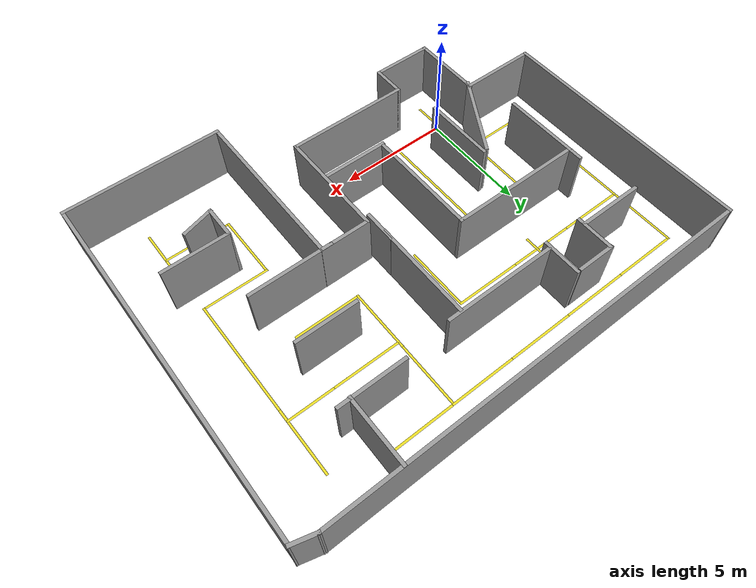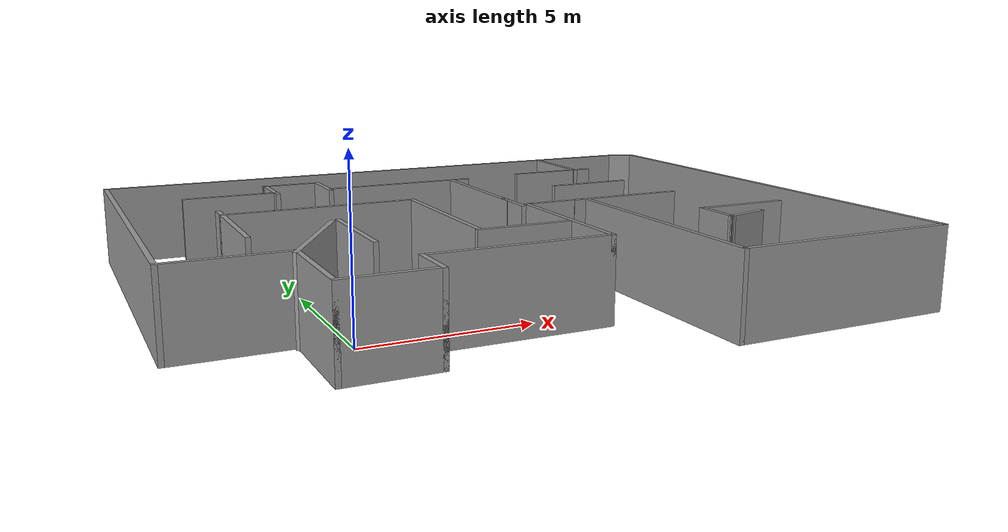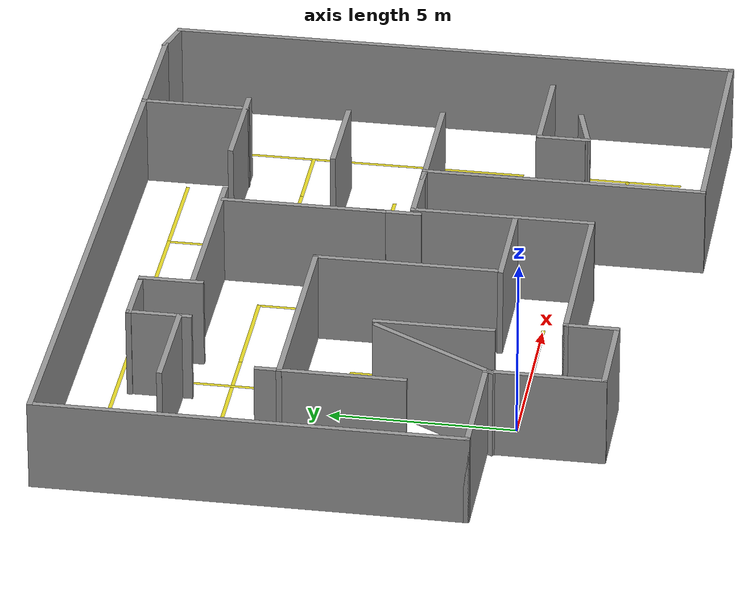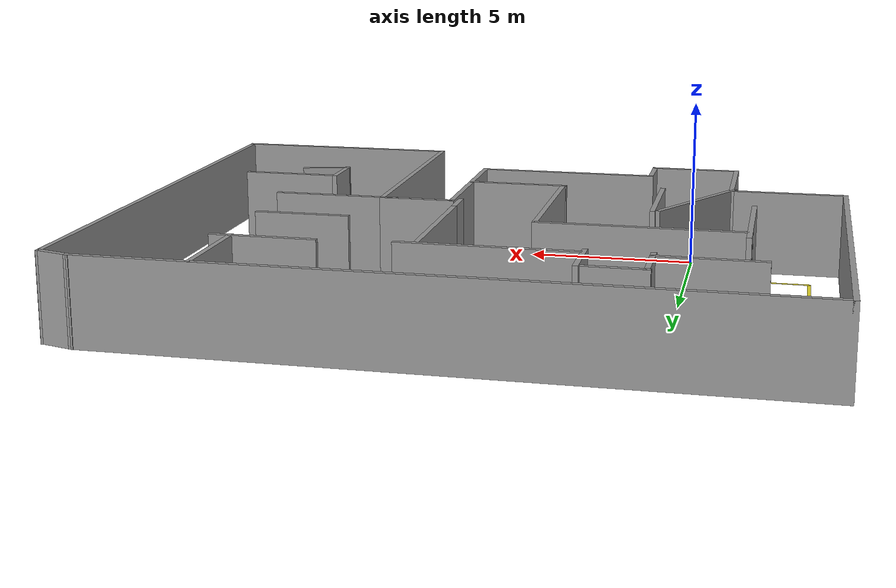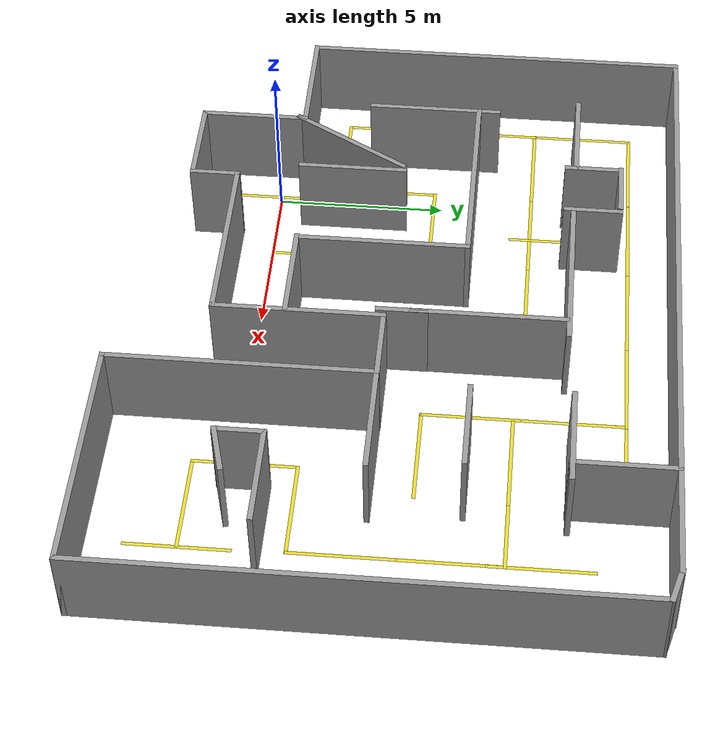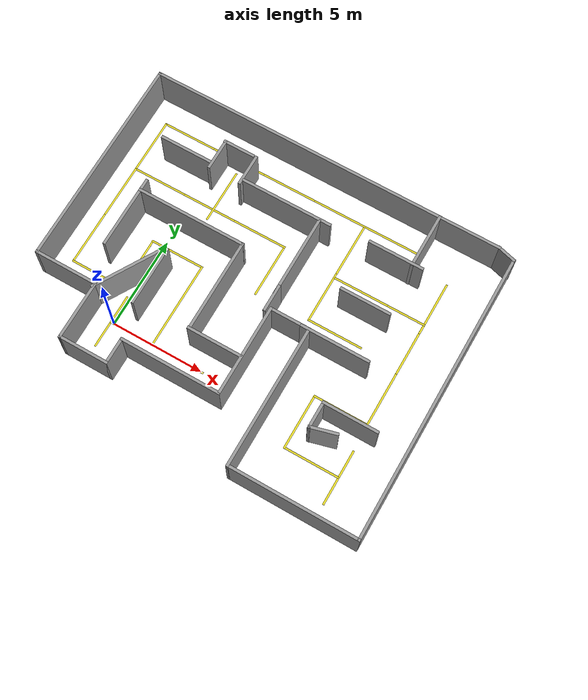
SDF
<sdf version="1.7">
 <world name="default">
  <light name="sun" type="directional">
   <pose>0 0 10 0 -0 0</pose>
   <diffuse>0.8 0.8 0.8 1</diffuse>
   <specular>0.1 0.1 0.1 1</specular>
   <attenuation>
    <range>1000</range>
    <constant>0.9</constant>
    <linear>0.01</linear>
    <quadratic>0.001</quadratic>
   </attenuation>
   <direction>-0.5 0.5 -1</direction>
   <spot><inner_angle>0</inner_angle><outer_angle>0</outer_angle><falloff>0</falloff></spot>
  </light>
  <gravity>0 0 -9.8</gravity>
  <magnetic_field>6e-06 2.3e-05 -4.2e-05</magnetic_field>
  <atmosphere type="adiabatic"/>
  <physics name="default_physics" default="0" type="ode">
   <max_step_size>0.001</max_step_size>
   <real_time_factor>1</real_time_factor>
   <real_time_update_rate>1000</real_time_update_rate>
  </physics>
  <scene><ambient>0.4 0.4 0.4 1</ambient><background>0.7 0.7 0.7 1</background><shadows>1</shadows></scene>
  <spherical_coordinates>
   <surface_model>EARTH_WGS84</surface_model>
   <latitude_deg>0</latitude_deg>
   <longitude_deg>0</longitude_deg>
   <elevation>0</elevation>
   <heading_deg>0</heading_deg>
  </spherical_coordinates>
  <model name="yellow line_5">
   <static>1</static>
   <link name="link_ground">
    <collision name="collision">
     <geometry><plane><normal>0 0 1</normal><size>0.1 4.8</size></plane></geometry>
     <surface><friction><ode><mu>100</mu><mu2>50</mu2></ode></friction></surface>
    </collision>
    <visual name="visual_ground">
     <cast_shadows>0</cast_shadows>
     <geometry><plane><normal>0 0 1</normal><size>0.1 4.8</size></plane></geometry>
     <material>
      <script><uri>file://media/materials/scripts/gazebo.material</uri><name>Gazebo/Yellow</name></script>
     </material>
    </visual>
   </link>
   <pose>2.19978 2.39516 0 0 -0 0</pose>
  </model>
  <model name="yellow line_6">
   <static>1</static>
   <link name="link_ground">
    <collision name="collision">
     <geometry><plane><normal>0 0 1</normal><size>0.1 2.5</size></plane></geometry>
     <surface><friction><ode><mu>100</mu><mu2>50</mu2></ode></friction></surface>
    </collision>
    <visual name="visual_ground">
     <cast_shadows>0</cast_shadows>
     <geometry><plane><normal>0 0 1</normal><size>0.1 2.5</size></plane></geometry>
     <material>
      <script><uri>file://media/materials/scripts/gazebo.material</uri><name>Gazebo/Yellow</name></script>
     </material>
    </visual>
   </link>
   <pose>1 0 0 0 -0 1.57</pose>
  </model>
  <model name="yellow line">
   <pose>3.64084 -0.002208 -2e-06 -4e-06 -0 1.57254</pose>
   <link name="link_ground">
    <collision name="collision">
     <geometry><box><size>0.1 3 1e-05</size></box></geometry>
     <surface><friction><ode><mu>100</mu><mu2>50</mu2></ode></friction></surface>
    </collision>
    <visual name="visual_ground">
     <cast_shadows>0</cast_shadows>
     <geometry><box><size>0.1 3 1e-05</size></box></geometry>
     <material>
      <script><uri>file://media/materials/scripts/gazebo.material</uri><name>Gazebo/Yellow</name></script>
     </material>
    </visual>
    <inertial>
     <inertia><ixx>1</ixx><ixy>0</ixy><ixz>0</ixz><iyy>1</iyy><iyz>0</iyz><izz>1</izz></inertia>
     <mass>1</mass>
    </inertial>
   </link>
  </model>
  <model name="yellow line_clone">
   <pose>0.751702 4.74225 -1e-06 4e-06 -0 1.57253</pose>
   <link name="link_ground">
    <collision name="collision">
     <geometry><box><size>0.1 3 1e-05</size></box></geometry>
     <surface><friction><ode><mu>100</mu><mu2>50</mu2></ode></friction></surface>
    </collision>
    <visual name="visual_ground">
     <cast_shadows>0</cast_shadows>
     <geometry><box><size>0.1 3 1e-05</size></box></geometry>
     <material>
      <script><uri>file://media/materials/scripts/gazebo.material</uri><name>Gazebo/Yellow</name></script>
     </material>
    </visual>
    <inertial>
     <inertia><ixx>1</ixx><ixy>0</ixy><ixz>0</ixz><iyy>1</iyy><iyz>0</iyz><izz>1</izz></inertia>
     <mass>1</mass>
    </inertial>
   </link>
  </model>
  <model name="yellow line_0">
   <pose>-0.684864 3.2835 -1.8e-05 -6e-06 0 0</pose>
   <link name="link_ground">
    <collision name="collision">
     <geometry><box><size>0.1 3 1e-05</size></box></geometry>
     <surface><friction><ode><mu>100</mu><mu2>50</mu2></ode></friction></surface>
    </collision>
    <visual name="visual_ground">
     <cast_shadows>0</cast_shadows>
     <geometry><box><size>0.1 3 1e-05</size></box></geometry>
     <material>
      <script><uri>file://media/materials/scripts/gazebo.material</uri><name>Gazebo/Yellow</name></script>
     </material>
    </visual>
    <inertial>
     <inertia><ixx>1</ixx><ixy>0</ixy><ixz>0</ixz><iyy>1</iyy><iyz>0</iyz><izz>1</izz></inertia>
     <mass>1</mass>
    </inertial>
   </link>
  </model>
  <model name="yellow line_clone_clone">
   <pose>-2.14412 1.82781 -1.1e-05 -4e-06 -5e-06 1.57253</pose>
   <link name="link_ground">
    <collision name="collision">
     <geometry><box><size>0.1 3 1e-05</size></box></geometry>
     <surface><friction><ode><mu>100</mu><mu2>50</mu2></ode></friction></surface>
    </collision>
    <visual name="visual_ground">
     <cast_shadows>0</cast_shadows>
     <geometry><box><size>0.1 3 1e-05</size></box></geometry>
     <material>
      <script><uri>file://media/materials/scripts/gazebo.material</uri><name>Gazebo/Yellow</name></script>
     </material>
    </visual>
    <inertial>
     <inertia><ixx>1</ixx><ixy>0</ixy><ixz>0</ixz><iyy>1</iyy><iyz>0</iyz><izz>1</izz></inertia>
     <mass>1</mass>
    </inertial>
   </link>
  </model>
  <model name="yellow line_1">
   <pose>-3.59658 3.31193 -2.9e-05 4e-06 -0 0</pose>
   <link name="link_ground">
    <collision name="collision">
     <geometry><box><size>0.1 3 1e-05</size></box></geometry>
     <surface><friction><ode><mu>100</mu><mu2>50</mu2></ode></friction></surface>
    </collision>
    <visual name="visual_ground">
     <cast_shadows>0</cast_shadows>
     <geometry><box><size>0.1 3 1e-05</size></box></geometry>
     <material>
      <script><uri>file://media/materials/scripts/gazebo.material</uri><name>Gazebo/Yellow</name></script>
     </material>
    </visual>
    <inertial>
     <inertia><ixx>1</ixx><ixy>0</ixy><ixz>0</ixz><iyy>1</iyy><iyz>0</iyz><izz>1</izz></inertia>
     <mass>1</mass>
    </inertial>
   </link>
  </model>
  <model name="yellow line_2">
   <pose>-3.59619 6.29229 1.6e-05 7e-06 1e-06 0</pose>
   <link name="link_ground">
    <collision name="collision">
     <geometry><box><size>0.1 3 1e-05</size></box></geometry>
     <surface><friction><ode><mu>100</mu><mu2>50</mu2></ode></friction></surface>
    </collision>
    <visual name="visual_ground">
     <cast_shadows>0</cast_shadows>
     <geometry><box><size>0.1 3 1e-05</size></box></geometry>
     <material>
      <script><uri>file://media/materials/scripts/gazebo.material</uri><name>Gazebo/Yellow</name></script>
     </material>
    </visual>
    <inertial>
     <inertia><ixx>1</ixx><ixy>0</ixy><ixz>0</ixz><iyy>1</iyy><iyz>0</iyz><izz>1</izz></inertia>
     <mass>1</mass>
    </inertial>
   </link>
  </model>
  <model name="yellow line_clone_clone_0">
   <pose>-2.14961 7.75344 4e-06 8e-06 -9e-06 1.57253</pose>
   <link name="link_ground">
    <collision name="collision">
     <geometry><box><size>0.1 3 1e-05</size></box></geometry>
     <surface><friction><ode><mu>100</mu><mu2>50</mu2></ode></friction></surface>
    </collision>
    <visual name="visual_ground">
     <cast_shadows>0</cast_shadows>
     <geometry><box><size>0.1 3 1e-05</size></box></geometry>
     <material>
      <script><uri>file://media/materials/scripts/gazebo.material</uri><name>Gazebo/Yellow</name></script>
     </material>
    </visual>
    <inertial>
     <inertia><ixx>1</ixx><ixy>0</ixy><ixz>0</ixz><iyy>1</iyy><iyz>0</iyz><izz>1</izz></inertia>
     <mass>1</mass>
    </inertial>
   </link>
  </model>
  <model name="yellow line_2_clone">
   <pose>-3.59718 9.25688 1e-05 3e-06 -0 0</pose>
   <link name="link_ground">
    <collision name="collision">
     <geometry><box><size>0.1 3 1e-05</size></box></geometry>
     <surface><friction><ode><mu>100</mu><mu2>50</mu2></ode></friction></surface>
    </collision>
    <visual name="visual_ground">
     <cast_shadows>0</cast_shadows>
     <geometry><box><size>0.1 3 1e-05</size></box></geometry>
     <material>
      <script><uri>file://media/materials/scripts/gazebo.material</uri><name>Gazebo/Yellow</name></script>
     </material>
    </visual>
    <inertial>
     <inertia><ixx>1</ixx><ixy>0</ixy><ixz>0</ixz><iyy>1</iyy><iyz>0</iyz><izz>1</izz></inertia>
     <mass>1</mass>
    </inertial>
   </link>
  </model>
  <model name="yellow line_clone_clone_1">
   <pose>0.810121 7.75828 -1.8e-05 -9e-06 -0 1.57253</pose>
   <link name="link_ground">
    <collision name="collision">
     <geometry><box><size>0.1 3 1e-05</size></box></geometry>
     <surface><friction><ode><mu>100</mu><mu2>50</mu2></ode></friction></surface>
    </collision>
    <visual name="visual_ground">
     <cast_shadows>0</cast_shadows>
     <geometry><box><size>0.1 3 1e-05</size></box></geometry>
     <material>
      <script><uri>file://media/materials/scripts/gazebo.material</uri><name>Gazebo/Yellow</name></script>
     </material>
    </visual>
    <inertial>
     <inertia><ixx>1</ixx><ixy>0</ixy><ixz>0</ixz><iyy>1</iyy><iyz>0</iyz><izz>1</izz></inertia>
     <mass>1</mass>
    </inertial>
   </link>
  </model>
  <model name="yellow line_clone_clone_2">
   <pose>3.8 7.76362 -1e-06 -4e-06 1e-06 1.57253</pose>
   <link name="link_ground">
    <collision name="collision">
     <geometry><box><size>0.1 3 1e-05</size></box></geometry>
     <surface><friction><ode><mu>100</mu><mu2>50</mu2></ode></friction></surface>
    </collision>
    <visual name="visual_ground">
     <cast_shadows>0</cast_shadows>
     <geometry><box><size>0.1 3 1e-05</size></box></geometry>
     <material>
      <script><uri>file://media/materials/scripts/gazebo.material</uri><name>Gazebo/Yellow</name></script>
     </material>
    </visual>
    <inertial>
     <inertia><ixx>1</ixx><ixy>0</ixy><ixz>0</ixz><iyy>1</iyy><iyz>0</iyz><izz>1</izz></inertia>
     <mass>1</mass>
    </inertial>
   </link>
  </model>
  <model name="yellow line_3">
   <pose>5.25148 6.31253 -1e-06 -4e-06 -0 2.8e-05</pose>
   <link name="link_ground">
    <collision name="collision">
     <geometry><box><size>0.1 3 1e-05</size></box></geometry>
     <surface><friction><ode><mu>100</mu><mu2>50</mu2></ode></friction></surface>
    </collision>
    <visual name="visual_ground">
     <cast_shadows>0</cast_shadows>
     <geometry><box><size>0.1 3 1e-05</size></box></geometry>
     <material>
      <script><uri>file://media/materials/scripts/gazebo.material</uri><name>Gazebo/Yellow</name></script>
     </material>
    </visual>
    <inertial>
     <inertia><ixx>1</ixx><ixy>0</ixy><ixz>0</ixz><iyy>1</iyy><iyz>0</iyz><izz>1</izz></inertia>
     <mass>1</mass>
    </inertial>
   </link>
  </model>
  <model name="yellow line_4">
   <pose>1.06082 8.6186 0 -3e-06 0 0</pose>
   <link name="link_ground">
    <collision name="collision">
     <geometry><box><size>0.1 2.99999 1e-05</size></box></geometry>
     <surface><friction><ode><mu>100</mu><mu2>50</mu2></ode></friction></surface>
    </collision>
    <visual name="visual_ground">
     <cast_shadows>0</cast_shadows>
     <geometry><box><size>0.1 2.99999 1e-05</size></box></geometry>
     <material>
      <script><uri>file://media/materials/scripts/gazebo.material</uri><name>Gazebo/Yellow</name></script>
     </material>
    </visual>
    <inertial>
     <inertia><ixx>1</ixx><ixy>0</ixy><ixz>0</ixz><iyy>1</iyy><iyz>0</iyz><izz>1</izz></inertia>
     <mass>1</mass>
    </inertial>
   </link>
  </model>
  <model name="yellow line_clone_clone_0_clone">
   <pose>-2.14731 10.7557 -4e-06 6e-06 -1e-06 1.57253</pose>
   <link name="link_ground">
    <collision name="collision">
     <geometry><box><size>0.1 3 1e-05</size></box></geometry>
     <surface><friction><ode><mu>100</mu><mu2>50</mu2></ode></friction></surface>
    </collision>
    <visual name="visual_ground">
     <cast_shadows>0</cast_shadows>
     <geometry><box><size>0.1 3 1e-05</size></box></geometry>
     <material>
      <script><uri>file://media/materials/scripts/gazebo.material</uri><name>Gazebo/Yellow</name></script>
     </material>
    </visual>
    <inertial>
     <inertia><ixx>1</ixx><ixy>0</ixy><ixz>0</ixz><iyy>1</iyy><iyz>0</iyz><izz>1</izz></inertia>
     <mass>1</mass>
    </inertial>
   </link>
  </model>
  <model name="yellow line_clone_clone_0_clone_clone">
   <pose>0.819861 10.7638 -1.5e-05 2e-06 -0 1.57253</pose>
   <link name="link_ground">
    <collision name="collision">
     <geometry><box><size>0.1 3 1e-05</size></box></geometry>
     <surface><friction><ode><mu>100</mu><mu2>50</mu2></ode></friction></surface>
    </collision>
    <visual name="visual_ground">
     <cast_shadows>0</cast_shadows>
     <geometry><box><size>0.1 3 1e-05</size></box></geometry>
     <material>
      <script><uri>file://media/materials/scripts/gazebo.material</uri><name>Gazebo/Yellow</name></script>
     </material>
    </visual>
    <inertial>
     <inertia><ixx>1</ixx><ixy>0</ixy><ixz>0</ixz><iyy>1</iyy><iyz>0</iyz><izz>1</izz></inertia>
     <mass>1</mass>
    </inertial>
   </link>
  </model>
  <model name="yellow line_clone_clone_0_clone_clone_0">
   <pose>3.81147 10.7719 -1.2e-05 -1.8e-05 -0 1.57253</pose>
   <link name="link_ground">
    <collision name="collision">
     <geometry><box><size>0.1 3 1e-05</size></box></geometry>
     <surface><friction><ode><mu>100</mu><mu2>50</mu2></ode></friction></surface>
    </collision>
    <visual name="visual_ground">
     <cast_shadows>0</cast_shadows>
     <geometry><box><size>0.1 3 1e-05</size></box></geometry>
     <material>
      <script><uri>file://media/materials/scripts/gazebo.material</uri><name>Gazebo/Yellow</name></script>
     </material>
    </visual>
    <inertial>
     <inertia><ixx>1</ixx><ixy>0</ixy><ixz>0</ixz><iyy>1</iyy><iyz>0</iyz><izz>1</izz></inertia>
     <mass>1</mass>
    </inertial>
   </link>
  </model>
  <model name="yellow line_clone_clone_0_clone_clone_1">
   <pose>6.7904 10.7785 9e-06 -9e-06 -0 1.57253</pose>
   <link name="link_ground">
    <collision name="collision">
     <geometry><box><size>0.1 3 1e-05</size></box></geometry>
     <surface><friction><ode><mu>100</mu><mu2>50</mu2></ode></friction></surface>
    </collision>
    <visual name="visual_ground">
     <cast_shadows>0</cast_shadows>
     <geometry><box><size>0.1 3 1e-05</size></box></geometry>
     <material>
      <script><uri>file://media/materials/scripts/gazebo.material</uri><name>Gazebo/Yellow</name></script>
     </material>
    </visual>
    <inertial>
     <inertia><ixx>1</ixx><ixy>0</ixy><ixz>0</ixz><iyy>1</iyy><iyz>0</iyz><izz>1</izz></inertia>
     <mass>1</mass>
    </inertial>
   </link>
  </model>
  <model name="yellow line_clone_clone_0_clone_clone_2">
   <pose>9.76563 10.7866 6e-06 -5e-06 0.000158 1.57253</pose>
   <link name="link_ground">
    <collision name="collision">
     <geometry><box><size>0.1 3 1e-05</size></box></geometry>
     <surface><friction><ode><mu>100</mu><mu2>50</mu2></ode></friction></surface>
    </collision>
    <visual name="visual_ground">
     <cast_shadows>0</cast_shadows>
     <geometry><box><size>0.1 3 1e-05</size></box></geometry>
     <material>
      <script><uri>file://media/materials/scripts/gazebo.material</uri><name>Gazebo/Yellow</name></script>
     </material>
    </visual>
    <inertial>
     <inertia><ixx>1</ixx><ixy>0</ixy><ixz>0</ixz><iyy>1</iyy><iyz>0</iyz><izz>1</izz></inertia>
     <mass>1</mass>
    </inertial>
   </link>
  </model>
  <model name="yellow line_7">
   <pose>8.23183 9.31132 -2.3e-05 -1.9e-05 1e-06 0</pose>
   <link name="link_ground">
    <collision name="collision">
     <geometry><box><size>0.1 3 1e-05</size></box></geometry>
     <surface><friction><ode><mu>100</mu><mu2>50</mu2></ode></friction></surface>
    </collision>
    <visual name="visual_ground">
     <cast_shadows>0</cast_shadows>
     <geometry><box><size>0.1 3 1e-05</size></box></geometry>
     <material>
      <script><uri>file://media/materials/scripts/gazebo.material</uri><name>Gazebo/Yellow</name></script>
     </material>
    </visual>
    <inertial>
     <inertia><ixx>1</ixx><ixy>0</ixy><ixz>0</ixz><iyy>1</iyy><iyz>0</iyz><izz>1</izz></inertia>
     <mass>1</mass>
    </inertial>
   </link>
  </model>
  <model name="yellow line_8">
   <pose>8.2307 6.41867 -7e-06 -8e-06 0 0</pose>
   <link name="link_ground">
    <collision name="collision">
     <geometry><box><size>0.1 3 1e-05</size></box></geometry>
     <surface><friction><ode><mu>100</mu><mu2>50</mu2></ode></friction></surface>
    </collision>
    <visual name="visual_ground">
     <cast_shadows>0</cast_shadows>
     <geometry><box><size>0.1 3 1e-05</size></box></geometry>
     <material>
      <script><uri>file://media/materials/scripts/gazebo.material</uri><name>Gazebo/Yellow</name></script>
     </material>
    </visual>
    <inertial>
     <inertia><ixx>1</ixx><ixy>0</ixy><ixz>0</ixz><iyy>1</iyy><iyz>0</iyz><izz>1</izz></inertia>
     <mass>1</mass>
    </inertial>
   </link>
  </model>
  <model name="yellow line_clone_clone_0_clone_clone_2_clone">
   <pose>9.72336 4.97585 0 3e-06 -1e-06 1.57253</pose>
   <link name="link_ground">
    <collision name="collision">
     <geometry><box><size>0.1 3 1e-05</size></box></geometry>
     <surface><friction><ode><mu>100</mu><mu2>50</mu2></ode></friction></surface>
    </collision>
    <visual name="visual_ground">
     <cast_shadows>0</cast_shadows>
     <geometry><box><size>0.1 3 1e-05</size></box></geometry>
     <material>
      <script><uri>file://media/materials/scripts/gazebo.material</uri><name>Gazebo/Yellow</name></script>
     </material>
    </visual>
    <inertial>
     <inertia><ixx>1</ixx><ixy>0</ixy><ixz>0</ixz><iyy>1</iyy><iyz>0</iyz><izz>1</izz></inertia>
     <mass>1</mass>
    </inertial>
   </link>
  </model>
  <model name="yellow line_clone_clone_0_clone_clone_2_clone_0">
   <pose>9.75262 7.5806 -1e-06 -4e-06 -0 1.57253</pose>
   <link name="link_ground">
    <collision name="collision">
     <geometry><box><size>0.1 3 1e-05</size></box></geometry>
     <surface><friction><ode><mu>100</mu><mu2>50</mu2></ode></friction></surface>
    </collision>
    <visual name="visual_ground">
     <cast_shadows>0</cast_shadows>
     <geometry><box><size>0.1 3 1e-05</size></box></geometry>
     <material>
      <script><uri>file://media/materials/scripts/gazebo.material</uri><name>Gazebo/Yellow</name></script>
     </material>
    </visual>
    <inertial>
     <inertia><ixx>1</ixx><ixy>0</ixy><ixz>0</ixz><iyy>1</iyy><iyz>0</iyz><izz>1</izz></inertia>
     <mass>1</mass>
    </inertial>
   </link>
  </model>
  <model name="yellow line_clone_clone_0_clone_clone_2_clone_1">
   <pose>11.8582 7.58394 1e-06 -1e-05 -1e-06 1.57253</pose>
   <link name="link_ground">
    <collision name="collision">
     <geometry><box><size>0.1 3 1e-05</size></box></geometry>
     <surface><friction><ode><mu>100</mu><mu2>50</mu2></ode></friction></surface>
    </collision>
    <visual name="visual_ground">
     <cast_shadows>0</cast_shadows>
     <geometry><box><size>0.1 3 1e-05</size></box></geometry>
     <material>
      <script><uri>file://media/materials/scripts/gazebo.material</uri><name>Gazebo/Yellow</name></script>
     </material>
    </visual>
    <inertial>
     <inertia><ixx>1</ixx><ixy>0</ixy><ixz>0</ixz><iyy>1</iyy><iyz>0</iyz><izz>1</izz></inertia>
     <mass>1</mass>
    </inertial>
   </link>
  </model>
  <model name="yellow line_9">
   <pose>13.3118 6.10237 -1.7e-05 -1.4e-05 0 0</pose>
   <link name="link_ground">
    <collision name="collision">
     <geometry><box><size>0.1 3 1e-05</size></box></geometry>
     <surface><friction><ode><mu>100</mu><mu2>50</mu2></ode></friction></surface>
    </collision>
    <visual name="visual_ground">
     <cast_shadows>0</cast_shadows>
     <geometry><box><size>0.1 3 1e-05</size></box></geometry>
     <material>
      <script><uri>file://media/materials/scripts/gazebo.material</uri><name>Gazebo/Yellow</name></script>
     </material>
    </visual>
    <inertial>
     <inertia><ixx>1</ixx><ixy>0</ixy><ixz>0</ixz><iyy>1</iyy><iyz>0</iyz><izz>1</izz></inertia>
     <mass>1</mass>
    </inertial>
   </link>
  </model>
  <model name="yellow line_10">
   <pose>13.3156 8.55615 -2e-06 4e-06 -0 0</pose>
   <link name="link_ground">
    <collision name="collision">
     <geometry><box><size>0.1 3 1e-05</size></box></geometry>
     <surface><friction><ode><mu>100</mu><mu2>50</mu2></ode></friction></surface>
    </collision>
    <visual name="visual_ground">
     <cast_shadows>0</cast_shadows>
     <geometry><box><size>0.1 3 1e-05</size></box></geometry>
     <material>
      <script><uri>file://media/materials/scripts/gazebo.material</uri><name>Gazebo/Yellow</name></script>
     </material>
    </visual>
    <inertial>
     <inertia><ixx>1</ixx><ixy>0</ixy><ixz>0</ixz><iyy>1</iyy><iyz>0</iyz><izz>1</izz></inertia>
     <mass>1</mass>
    </inertial>
   </link>
  </model>
  <model name="yellow line_11">
   <pose>13.3117 3.16747 -7e-06 1.6e-05 1e-06 0</pose>
   <link name="link_ground">
    <collision name="collision">
     <geometry><box><size>0.1 3 1e-05</size></box></geometry>
     <surface><friction><ode><mu>100</mu><mu2>50</mu2></ode></friction></surface>
    </collision>
    <visual name="visual_ground">
     <cast_shadows>0</cast_shadows>
     <geometry><box><size>0.1 3 1e-05</size></box></geometry>
     <material>
      <script><uri>file://media/materials/scripts/gazebo.material</uri><name>Gazebo/Yellow</name></script>
     </material>
    </visual>
    <inertial>
     <inertia><ixx>1</ixx><ixy>0</ixy><ixz>0</ixz><iyy>1</iyy><iyz>0</iyz><izz>1</izz></inertia>
     <mass>1</mass>
    </inertial>
   </link>
  </model>
  <model name="yellow line_clone_clone_0_clone_clone_2_clone_clone">
   <pose>11.8558 1.70407 -2.6e-05 8e-06 -1e-06 1.57253</pose>
   <link name="link_ground">
    <collision name="collision">
     <geometry><box><size>0.1 3 1e-05</size></box></geometry>
     <surface><friction><ode><mu>100</mu><mu2>50</mu2></ode></friction></surface>
    </collision>
    <visual name="visual_ground">
     <cast_shadows>0</cast_shadows>
     <geometry><box><size>0.1 3 1e-05</size></box></geometry>
     <material>
      <script><uri>file://media/materials/scripts/gazebo.material</uri><name>Gazebo/Yellow</name></script>
     </material>
    </visual>
    <inertial>
     <inertia><ixx>1</ixx><ixy>0</ixy><ixz>0</ixz><iyy>1</iyy><iyz>0</iyz><izz>1</izz></inertia>
     <mass>1</mass>
    </inertial>
   </link>
  </model>
  <model name="yellow line_12">
   <pose>10.4111 0.197266 -7e-06 -1.6e-05 2e-06 0</pose>
   <link name="link_ground">
    <collision name="collision">
     <geometry><box><size>0.1 3 1e-05</size></box></geometry>
     <surface><friction><ode><mu>100</mu><mu2>50</mu2></ode></friction></surface>
    </collision>
    <visual name="visual_ground">
     <cast_shadows>0</cast_shadows>
     <geometry><box><size>0.1 3 1e-05</size></box></geometry>
     <material>
      <script><uri>file://media/materials/scripts/gazebo.material</uri><name>Gazebo/Yellow</name></script>
     </material>
    </visual>
    <inertial>
     <inertia><ixx>1</ixx><ixy>0</ixy><ixz>0</ixz><iyy>1</iyy><iyz>0</iyz><izz>1</izz></inertia>
     <mass>1</mass>
    </inertial>
   </link>
  </model>
  <model name="yellow line_clone_clone_0_clone_clone_2_clone_clone_clone">
   <pose>11.8744 -1.24777 3e-06 1e-06 -0 1.57253</pose>
   <link name="link_ground">
    <collision name="collision">
     <geometry><box><size>0.1 3 1e-05</size></box></geometry>
     <surface><friction><ode><mu>100</mu><mu2>50</mu2></ode></friction></surface>
    </collision>
    <visual name="visual_ground">
     <cast_shadows>0</cast_shadows>
     <geometry><box><size>0.1 3 1e-05</size></box></geometry>
     <material>
      <script><uri>file://media/materials/scripts/gazebo.material</uri><name>Gazebo/Yellow</name></script>
     </material>
    </visual>
    <inertial>
     <inertia><ixx>1</ixx><ixy>0</ixy><ixz>0</ixz><iyy>1</iyy><iyz>0</iyz><izz>1</izz></inertia>
     <mass>1</mass>
    </inertial>
   </link>
  </model>
  <model name="yellow line_13">
   <pose>13.3674 -1.23961 -9e-06 9e-06 -0 0</pose>
   <link name="link_ground">
    <collision name="collision">
     <geometry><box><size>0.1 3 1e-05</size></box></geometry>
     <surface><friction><ode><mu>100</mu><mu2>50</mu2></ode></friction></surface>
    </collision>
    <visual name="visual_ground">
     <cast_shadows>0</cast_shadows>
     <geometry><box><size>0.1 3 1e-05</size></box></geometry>
     <material>
      <script><uri>file://media/materials/scripts/gazebo.material</uri><name>Gazebo/Yellow</name></script>
     </material>
    </visual>
    <inertial>
     <inertia><ixx>1</ixx><ixy>0</ixy><ixz>0</ixz><iyy>1</iyy><iyz>0</iyz><izz>1</izz></inertia>
     <mass>1</mass>
    </inertial>
   </link>
  </model>
  <model name="yellow line_14">
   <pose>-0.200066 0.042625 -2e-06 4e-06 -0 0</pose>
   <link name="link_ground">
    <collision name="collision">
     <geometry><box><size>0.1 3 1e-05</size></box></geometry>
     <surface><friction><ode><mu>100</mu><mu2>50</mu2></ode></friction></surface>
    </collision>
    <visual name="visual_ground">
     <cast_shadows>0</cast_shadows>
     <geometry><box><size>0.1 3 1e-05</size></box></geometry>
     <material>
      <script><uri>file://media/materials/scripts/gazebo.material</uri><name>Gazebo/Yellow</name></script>
     </material>
    </visual>
    <inertial>
     <inertia><ixx>1</ixx><ixy>0</ixy><ixz>0</ixz><iyy>1</iyy><iyz>0</iyz><izz>1</izz></inertia>
     <mass>1</mass>
    </inertial>
   </link>
  </model>
  <model name="room">
   <pose>5.60096 4.11911 0 0 -0 0</pose>
   <link name="Wall_19">
    <collision name="Wall_19_Collision">
     <geometry><box><size>3.25 0.15 2.5</size></box></geometry>
     <pose>0 0 1.25 0 -0 0</pose>
    </collision>
    <visual name="Wall_19_Visual">
     <pose>0 0 1.25 0 -0 0</pose>
     <geometry><box><size>3.25 0.15 2.5</size></box></geometry>
     <material>
      <script><uri>file://media/materials/scripts/gazebo.material</uri><name>Gazebo/Grey</name></script>
      <ambient>1 1 1 1</ambient>
     </material>
     <meta><layer>0</layer></meta>
    </visual>
    <pose>-6.78367 -4.98367 0 0 0 -1.5708</pose>
   </link>
   <link name="Wall_20">
    <collision name="Wall_20_Collision">
     <geometry><box><size>2.75 0.15 2.5</size></box></geometry>
     <pose>0 0 1.25 0 -0 0</pose>
    </collision>
    <visual name="Wall_20_Visual">
     <pose>0 0 1.25 0 -0 0</pose>
     <geometry><box><size>2.75 0.15 2.5</size></box></geometry>
     <material>
      <script><uri>file://media/materials/scripts/gazebo.material</uri><name>Gazebo/Grey</name></script>
      <ambient>1 1 1 1</ambient>
     </material>
     <meta><layer>0</layer></meta>
    </visual>
    <pose>-5.48367 -6.53367 0 0 -0 0</pose>
   </link>
   <link name="Wall_21">
    <collision name="Wall_21_Collision">
     <geometry><box><size>1.5 0.15 2.5</size></box></geometry>
     <pose>0 0 1.25 0 -0 0</pose>
    </collision>
    <visual name="Wall_21_Visual">
     <pose>0 0 1.25 0 -0 0</pose>
     <geometry><box><size>1.5 0.15 2.5</size></box></geometry>
     <material>
      <script><uri>file://media/materials/scripts/gazebo.material</uri><name>Gazebo/Grey</name></script>
      <ambient>1 1 1 1</ambient>
     </material>
     <meta><layer>0</layer></meta>
    </visual>
    <pose>-4.18367 -5.85867 0 0 -0 1.5708</pose>
   </link>
   <link name="Wall_22">
    <collision name="Wall_22_Collision">
     <geometry><box><size>5.5 0.15 2.5</size></box></geometry>
     <pose>0 0 1.25 0 -0 0</pose>
    </collision>
    <visual name="Wall_22_Visual">
     <pose>0 0 1.25 0 -0 0</pose>
     <geometry><box><size>5.5 0.15 2.5</size></box></geometry>
     <material>
      <script><uri>file://media/materials/scripts/gazebo.material</uri><name>Gazebo/Grey</name></script>
      <ambient>1 1 1 1</ambient>
     </material>
     <meta><layer>0</layer></meta>
    </visual>
    <pose>-1.50867 -5.18367 0 0 -0 0</pose>
   </link>
   <link name="Wall_23">
    <collision name="Wall_23_Collision">
     <geometry><box><size>5 0.15 2.5</size></box></geometry>
     <pose>0 0 1.25 0 -0 0</pose>
    </collision>
    <visual name="Wall_23_Visual">
     <pose>0 0 1.25 0 -0 0</pose>
     <geometry><box><size>5 0.15 2.5</size></box></geometry>
     <material>
      <script><uri>file://media/materials/scripts/gazebo.material</uri><name>Gazebo/Grey</name></script>
      <ambient>1 1 1 1</ambient>
     </material>
     <meta><layer>0</layer></meta>
    </visual>
    <pose>1.16633 -2.75867 0 0 -0 1.5708</pose>
   </link>
   <link name="Wall_24">
    <collision name="Wall_24_Collision">
     <geometry><box><size>2.25 0.15 2.5</size></box></geometry>
     <pose>0 0 1.25 0 -0 0</pose>
    </collision>
    <visual name="Wall_24_Visual">
     <pose>0 0 1.25 0 -0 0</pose>
     <geometry><box><size>2.25 0.15 2.5</size></box></geometry>
     <material>
      <script><uri>file://media/materials/scripts/gazebo.material</uri><name>Gazebo/Grey</name></script>
      <ambient>1 1 1 1</ambient>
     </material>
     <meta><layer>0</layer></meta>
    </visual>
    <pose>2.21633 -0.333668 0 0 -0 0</pose>
   </link>
   <link name="Wall_25">
    <collision name="Wall_25_Collision">
     <geometry><box><size>7.75 0.15 2.5</size></box></geometry>
     <pose>0 0 1.25 0 -0 0</pose>
    </collision>
    <visual name="Wall_25_Visual">
     <pose>0 0 1.25 0 -0 0</pose>
     <geometry><box><size>7.75 0.15 2.5</size></box></geometry>
     <material>
      <script><uri>file://media/materials/scripts/gazebo.material</uri><name>Gazebo/Grey</name></script>
      <ambient>1 1 1 1</ambient>
     </material>
     <meta><layer>0</layer></meta>
    </visual>
    <pose>3.26633 -4.13367 0 0 0 -1.5708</pose>
   </link>
   <link name="Wall_26">
    <collision name="Wall_26_Collision">
     <geometry><box><size>7 0.15 2.5</size></box></geometry>
     <pose>0 0 1.25 0 -0 0</pose>
    </collision>
    <visual name="Wall_26_Visual">
     <pose>0 0 1.25 0 -0 0</pose>
     <geometry><box><size>7 0.15 2.5</size></box></geometry>
     <material>
      <script><uri>file://media/materials/scripts/gazebo.material</uri><name>Gazebo/Grey</name></script>
      <ambient>1 1 1 1</ambient>
     </material>
     <meta><layer>0</layer></meta>
    </visual>
    <pose>6.69133 -7.93367 0 0 -0 0</pose>
   </link>
   <link name="Wall_27">
    <collision name="Wall_27_Collision">
     <geometry><box><size>15.75 0.15 2.5</size></box></geometry>
     <pose>0 0 1.25 0 -0 0</pose>
    </collision>
    <visual name="Wall_27_Visual">
     <pose>0 0 1.25 0 -0 0</pose>
     <geometry><box><size>15.75 0.15 2.5</size></box></geometry>
     <material>
      <script><uri>file://media/materials/scripts/gazebo.material</uri><name>Gazebo/Grey</name></script>
      <ambient>1 1 1 1</ambient>
     </material>
     <meta><layer>0</layer></meta>
    </visual>
    <pose>10.1163 -0.133668 0 0 -0 1.5708</pose>
   </link>
   <link name="Wall_28">
    <collision name="Wall_28_Collision">
     <geometry><box><size>1.08408 0.15 2.5</size></box></geometry>
     <pose>0 0 1.25 0 -0 0</pose>
    </collision>
    <visual name="Wall_28_Visual">
     <pose>0 0 1.25 0 -0 0</pose>
     <geometry><box><size>1.08408 0.15 2.5</size></box></geometry>
     <material>
      <script><uri>file://media/materials/scripts/gazebo.material</uri><name>Gazebo/Grey</name></script>
      <ambient>1 1 1 1</ambient>
     </material>
     <meta><layer>0</layer></meta>
    </visual>
    <pose>9.66633 7.79133 0 0 -0 2.87065</pose>
   </link>
   <link name="Wall_3">
    <collision name="Wall_3_Collision">
     <geometry><box><size>3.5 0.15 2.5</size></box></geometry>
     <pose>0 0 1.25 0 -0 0</pose>
    </collision>
    <visual name="Wall_3_Visual">
     <pose>0 0 1.25 0 -0 0</pose>
     <geometry><box><size>3.5 0.15 2.5</size></box></geometry>
     <material>
      <script><uri>file://media/materials/scripts/gazebo.material</uri><name>Gazebo/Grey</name></script>
      <ambient>1 1 1 1</ambient>
     </material>
     <meta><layer>0</layer></meta>
    </visual>
    <pose>-8.45867 -3.43367 0 0 -0 3.14159</pose>
   </link>
   <link name="Wall_4">
    <collision name="Wall_4_Collision">
     <geometry><box><size>11.5 0.15 2.5</size></box></geometry>
     <pose>0 0 1.25 0 -0 0</pose>
    </collision>
    <visual name="Wall_4_Visual">
     <pose>0 0 1.25 0 -0 0</pose>
     <geometry><box><size>11.5 0.15 2.5</size></box></geometry>
     <material>
      <script><uri>file://media/materials/scripts/gazebo.material</uri><name>Gazebo/Grey</name></script>
      <ambient>1 1 1 1</ambient>
     </material>
     <meta><layer>0</layer></meta>
    </visual>
    <pose>-10.1337 2.24133 0 0 -0 1.5708</pose>
   </link>
   <link name="Wall_5">
    <collision name="Wall_5_Collision">
     <geometry><box><size>19.5 0.15 2.5</size></box></geometry>
     <pose>0 0 1.25 0 -0 0</pose>
    </collision>
    <visual name="Wall_5_Visual">
     <pose>0 0 1.25 0 -0 0</pose>
     <geometry><box><size>19.5 0.15 2.5</size></box></geometry>
     <material>
      <script><uri>file://media/materials/scripts/gazebo.material</uri><name>Gazebo/Grey</name></script>
      <ambient>1 1 1 1</ambient>
     </material>
     <meta><layer>0</layer></meta>
    </visual>
    <pose>-0.458668 7.91633 0 0 -0 0</pose>
   </link>
   <static>1</static>
  </model>
  <model name="maze_new">
   <pose>5.78301 4.98986 0 0 -0 0</pose>
   <link name="Wall_12">
    <collision name="Wall_12_Collision">
     <geometry><box><size>5 0.15 2.5</size></box></geometry>
     <pose>0 0 1.25 0 -0 0</pose>
    </collision>
    <visual name="Wall_12_Visual">
     <pose>0 0 1.25 0 -0 0</pose>
     <geometry><box><size>5 0.15 2.5</size></box></geometry>
     <material>
      <script><uri>file://media/materials/scripts/gazebo.material</uri><name>Gazebo/Grey</name></script>
      <ambient>1 1 1 1</ambient>
     </material>
     <meta><layer>0</layer></meta>
    </visual>
    <pose>-1.87974 -1.44458 0 0 -0 1.5708</pose>
   </link>
   <link name="Wall_14">
    <collision name="Wall_14_Collision">
     <geometry><box><size>3 0.15 2.5</size></box></geometry>
     <pose>0 0 1.25 0 -0 0</pose>
    </collision>
    <visual name="Wall_14_Visual">
     <pose>0 0 1.25 0 -0 0</pose>
     <geometry><box><size>3 0.15 2.5</size></box></geometry>
     <material>
      <script><uri>file://media/materials/scripts/gazebo.material</uri><name>Gazebo/Grey</name></script>
      <ambient>1 1 1 1</ambient>
     </material>
     <meta><layer>0</layer></meta>
    </visual>
    <pose>-6.85611 4.03277 0 0 -0 0</pose>
   </link>
   <link name="Wall_16">
    <collision name="Wall_16_Collision">
     <geometry><box><size>1.75 0.15 2.5</size></box></geometry>
     <pose>0 0 1.25 0 -0 0</pose>
    </collision>
    <visual name="Wall_16_Visual">
     <pose>0 0 1.25 0 -0 0</pose>
     <geometry><box><size>1.75 0.15 2.5</size></box></geometry>
     <material>
      <script><uri>file://media/materials/scripts/gazebo.material</uri><name>Gazebo/Grey</name></script>
      <ambient>1 1 1 1</ambient>
     </material>
     <meta><layer>0</layer></meta>
    </visual>
    <pose>-4.64771 5.37951 0 0 -0 0</pose>
   </link>
   <link name="Wall_2">
    <collision name="Wall_2_Collision">
     <geometry><box><size>3.25 0.15 2.5</size></box></geometry>
     <pose>0 0 1.25 0 -0 0</pose>
    </collision>
    <visual name="Wall_2_Visual">
     <pose>0 0 1.25 0 -0 0</pose>
     <geometry><box><size>3.25 0.15 2.5</size></box></geometry>
     <material>
      <script><uri>file://media/materials/scripts/gazebo.material</uri><name>Gazebo/Grey</name></script>
      <ambient>1 1 1 1</ambient>
     </material>
     <meta><layer>0</layer></meta>
    </visual>
    <pose>-4.90796 -2.64391 0 0 -0 1.5708</pose>
   </link>
   <link name="Wall_20">
    <collision name="Wall_20_Collision">
     <geometry><box><size>5 0.15 2.5</size></box></geometry>
     <pose>0 0 1.25 0 -0 0</pose>
    </collision>
    <visual name="Wall_20_Visual">
     <pose>0 0 1.25 0 -0 0</pose>
     <geometry><box><size>5 0.15 2.5</size></box></geometry>
     <material>
      <script><uri>file://media/materials/scripts/gazebo.material</uri><name>Gazebo/Grey</name></script>
      <ambient>1 1 1 1</ambient>
     </material>
     <meta><layer>0</layer></meta>
    </visual>
    <pose>-1.13084 3.99779 0 0 -0 3.14159</pose>
   </link>
   <link name="Wall_22">
    <collision name="Wall_22_Collision">
     <geometry><box><size>4.5 0.15 2.5</size></box></geometry>
     <pose>0 0 1.25 0 -0 0</pose>
    </collision>
    <visual name="Wall_22_Visual">
     <pose>0 0 1.25 0 -0 0</pose>
     <geometry><box><size>4.5 0.15 2.5</size></box></geometry>
     <material>
      <script><uri>file://media/materials/scripts/gazebo.material</uri><name>Gazebo/Grey</name></script>
      <ambient>1 1 1 1</ambient>
     </material>
     <meta><layer>0</layer></meta>
    </visual>
    <pose>0.743767 1.75283 0 0 -0 -1.5708</pose>
   </link>
   <link name="Wall_24">
    <collision name="Wall_24_Collision">
     <geometry><box><size>3 0.15 2.5</size></box></geometry>
     <pose>0 0 1.25 0 -0 0</pose>
    </collision>
    <visual name="Wall_24_Visual">
     <pose>0 0 1.25 0 -0 0</pose>
     <geometry><box><size>3 0.15 2.5</size></box></geometry>
     <material>
      <script><uri>file://media/materials/scripts/gazebo.material</uri><name>Gazebo/Grey</name></script>
      <ambient>1 1 1 1</ambient>
     </material>
     <meta><layer>0</layer></meta>
    </visual>
    <pose>4.86312 4.20768 0 0 -0 3.14159</pose>
   </link>
   <link name="Wall_26">
    <collision name="Wall_26_Collision">
     <geometry><box><size>2.75 0.15 2.5</size></box></geometry>
     <pose>0 0 1.25 0 -0 0</pose>
    </collision>
    <visual name="Wall_26_Visual">
     <pose>0 0 1.25 0 -0 0</pose>
     <geometry><box><size>2.75 0.15 2.5</size></box></geometry>
     <material>
      <script><uri>file://media/materials/scripts/gazebo.material</uri><name>Gazebo/Grey</name></script>
      <ambient>1 1 1 1</ambient>
     </material>
     <meta><layer>0</layer></meta>
    </visual>
    <pose>4.71461 1.37429 0 0 -0 0</pose>
   </link>
   <link name="Wall_28">
    <collision name="Wall_28_Collision">
     <geometry><box><size>3.75 0.15 2.5</size></box></geometry>
     <pose>0 0 1.25 0 -0 0</pose>
    </collision>
    <visual name="Wall_28_Visual">
     <pose>0 0 1.25 0 -0 0</pose>
     <geometry><box><size>3.75 0.15 2.5</size></box></geometry>
     <material>
      <script><uri>file://media/materials/scripts/gazebo.material</uri><name>Gazebo/Grey</name></script>
      <ambient>1 1 1 1</ambient>
     </material>
     <meta><layer>0</layer></meta>
    </visual>
    <pose>4.48516 -1.21424 0 0 -0 0</pose>
   </link>
   <link name="Wall_31">
    <collision name="Wall_31_Collision">
     <geometry><box><size>3 0.15 2.5</size></box></geometry>
     <pose>0 0 1.25 0 -0 0</pose>
    </collision>
    <visual name="Wall_31_Visual">
     <pose>0 0 1.25 0 -0 0</pose>
     <geometry><box><size>3 0.15 2.5</size></box></geometry>
     <material>
      <script><uri>file://media/materials/scripts/gazebo.material</uri><name>Gazebo/Grey</name></script>
      <ambient>1 1 1 1</ambient>
     </material>
     <meta><layer>0</layer></meta>
    </visual>
    <pose>6.85611 -4.01265 0 0 -0 0</pose>
   </link>
   <link name="Wall_33">
    <collision name="Wall_33_Collision">
     <geometry><box><size>1.5 0.15 2.5</size></box></geometry>
     <pose>0 0 1.25 0 -0 0</pose>
    </collision>
    <visual name="Wall_33_Visual">
     <pose>0 0 1.25 0 -0 0</pose>
     <geometry><box><size>1.5 0.15 2.5</size></box></geometry>
     <material>
      <script><uri>file://media/materials/scripts/gazebo.material</uri><name>Gazebo/Grey</name></script>
      <ambient>1 1 1 1</ambient>
     </material>
     <meta><layer>0</layer></meta>
    </visual>
    <pose>5.4311 -4.68765 0 0 -0 -1.5708</pose>
   </link>
   <link name="Wall_35">
    <collision name="Wall_35_Collision">
     <geometry><box><size>1.5 0.15 2.5</size></box></geometry>
     <pose>0 0 1.25 0 -0 0</pose>
    </collision>
    <visual name="Wall_35_Visual">
     <pose>0 0 1.25 0 -0 0</pose>
     <geometry><box><size>1.5 0.15 2.5</size></box></geometry>
     <material>
      <script><uri>file://media/materials/scripts/gazebo.material</uri><name>Gazebo/Grey</name></script>
      <ambient>1 1 1 1</ambient>
     </material>
     <meta><layer>0</layer></meta>
    </visual>
    <pose>6.0831 -5.18795 0 0 -0 0.261799</pose>
   </link>
   <link name="Wall_6">
    <collision name="Wall_6_Collision">
     <geometry><box><size>4 0.15 2.5</size></box></geometry>
     <pose>0 0 1.25 0 -0 0</pose>
    </collision>
    <visual name="Wall_6_Visual">
     <pose>0 0 1.25 0 -0 0</pose>
     <geometry><box><size>4 0.15 2.5</size></box></geometry>
     <material>
      <script><uri>file://media/materials/scripts/gazebo.material</uri><name>Gazebo/Grey</name></script>
      <ambient>1 1 1 1</ambient>
     </material>
     <meta><layer>0</layer></meta>
    </visual>
    <pose>-7.72142 -0.355257 0 0 -0 -1.5708</pose>
   </link>
   <link name="Wall_8">
    <collision name="Wall_8_Collision">
     <geometry><box><size>6 0.15 2.5</size></box></geometry>
     <pose>0 0 1.25 0 -0 0</pose>
    </collision>
    <visual name="Wall_8_Visual">
     <pose>0 0 1.25 0 -0 0</pose>
     <geometry><box><size>6 0.15 2.5</size></box></geometry>
     <material>
      <script><uri>file://media/materials/scripts/gazebo.material</uri><name>Gazebo/Grey</name></script>
      <ambient>1 1 1 1</ambient>
     </material>
     <meta><layer>0</layer></meta>
    </visual>
    <pose>-4.79861 0.989504 0 0 -0 3.14159</pose>
   </link>
   <static>1</static>
  </model>
  <model name="maze_new_0">
   <pose>5.14593 6.04962 0 0 -0 0</pose>
   <link name="Wall_39">
    <collision name="Wall_39_Collision">
     <geometry><box><size>3 0.15 2.5</size></box></geometry>
     <pose>0 0 1.25 0 -0 0</pose>
    </collision>
    <visual name="Wall_39_Visual">
     <pose>0 0 1.25 0 -0 0</pose>
     <geometry><box><size>3 0.15 2.5</size></box></geometry>
     <material>
      <script><uri>file://media/materials/scripts/gazebo.material</uri><name>Gazebo/Grey</name></script>
      <ambient>1 1 1 1</ambient>
     </material>
     <meta><layer>0</layer></meta>
    </visual>
    <pose>0.150633 -5.04701 0 0 -0 0</pose>
   </link>
   <link name="Wall_42">
    <collision name="Wall_42_Collision">
     <geometry><box><size>4 0.15 2.5</size></box></geometry>
     <pose>0 0 1.25 0 -0 0</pose>
    </collision>
    <visual name="Wall_42_Visual">
     <pose>0 0 1.25 0 -0 0</pose>
     <geometry><box><size>4 0.15 2.5</size></box></geometry>
     <material>
      <script><uri>file://media/materials/scripts/gazebo.material</uri><name>Gazebo/Grey</name></script>
      <ambient>1 1 1 1</ambient>
     </material>
     <meta><layer>0</layer></meta>
    </visual>
    <pose>-5.41994 -3.87568 0 0 -0 -2.0944</pose>
   </link>
   <link name="Wall_45">
    <collision name="Wall_45_Collision">
     <geometry><box><size>1.5 0.15 2.5</size></box></geometry>
     <pose>0 0 1.25 0 -0 0</pose>
    </collision>
    <visual name="Wall_45_Visual">
     <pose>0 0 1.25 0 -0 0</pose>
     <geometry><box><size>1.5 0.15 2.5</size></box></geometry>
     <material>
      <script><uri>file://media/materials/scripts/gazebo.material</uri><name>Gazebo/Grey</name></script>
      <ambient>1 1 1 1</ambient>
     </material>
     <meta><layer>0</layer></meta>
    </visual>
    <pose>1.39055 -1.77441 0 0 -0 -1.5708</pose>
   </link>
   <link name="Wall_47">
    <collision name="Wall_47_Collision">
     <geometry><box><size>1.75 0.15 2.5</size></box></geometry>
     <pose>0 0 1.25 0 -0 0</pose>
    </collision>
    <visual name="Wall_47_Visual">
     <pose>0 0 1.25 0 -0 0</pose>
     <geometry><box><size>1.75 0.15 2.5</size></box></geometry>
     <material>
      <script><uri>file://media/materials/scripts/gazebo.material</uri><name>Gazebo/Grey</name></script>
      <ambient>1 1 1 1</ambient>
     </material>
     <meta><layer>0</layer></meta>
    </visual>
    <pose>-4.78532 3.51315 0 0 -0 -1.5708</pose>
   </link>
   <link name="Wall_49">
    <collision name="Wall_49_Collision">
     <geometry><box><size>1.75 0.15 2.5</size></box></geometry>
     <pose>0 0 1.25 0 -0 0</pose>
    </collision>
    <visual name="Wall_49_Visual">
     <pose>0 0 1.25 0 -0 0</pose>
     <geometry><box><size>1.75 0.15 2.5</size></box></geometry>
     <material>
      <script><uri>file://media/materials/scripts/gazebo.material</uri><name>Gazebo/Grey</name></script>
      <ambient>1 1 1 1</ambient>
     </material>
     <meta><layer>0</layer></meta>
    </visual>
    <pose>-3.02739 3.51315 0 0 -0 -1.5708</pose>
   </link>
   <link name="Wall_51">
    <collision name="Wall_51_Collision">
     <geometry><box><size>3 0.15 2.5</size></box></geometry>
     <pose>0 0 1.25 0 -0 0</pose>
    </collision>
    <visual name="Wall_51_Visual">
     <pose>0 0 1.25 0 -0 0</pose>
     <geometry><box><size>3 0.15 2.5</size></box></geometry>
     <material>
      <script><uri>file://media/materials/scripts/gazebo.material</uri><name>Gazebo/Grey</name></script>
      <ambient>1 1 1 1</ambient>
     </material>
     <meta><layer>0</layer></meta>
    </visual>
    <pose>6.40989 4.54962 0 0 -0 1.5708</pose>
   </link>
   <static>1</static>
  </model>
 </world>
</sdf>
